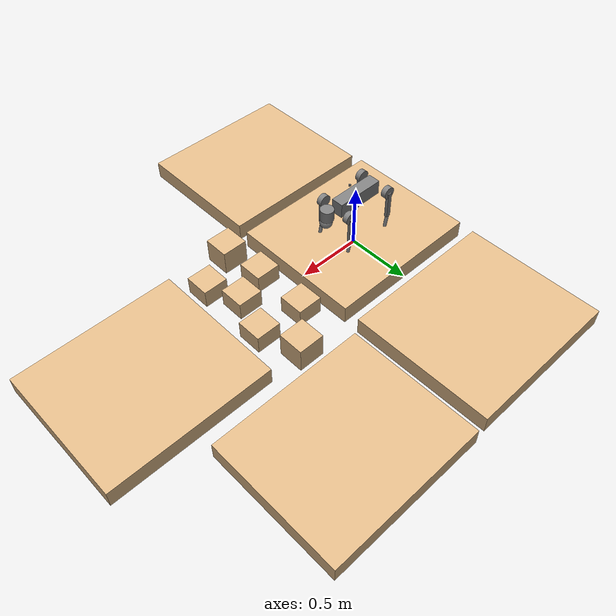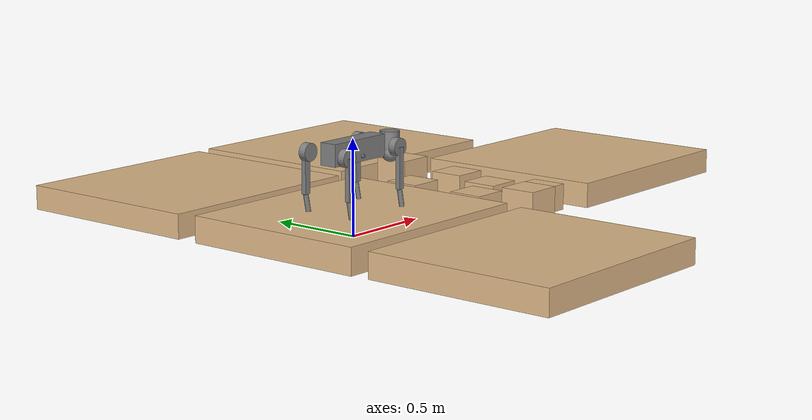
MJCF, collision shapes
<mujoco model="go2 scene">
  <include file="go2.xml"/>

  <statistic center="0 0 0.1" extent="0.8"/>

  <visual>
    <headlight diffuse="0.6 0.6 0.6" ambient="0.3 0.3 0.3" specular="0 0 0"/>
    <rgba haze="0.15 0.25 0.35 1"/>
    <global azimuth="-130" elevation="-20"/>
  </visual>

  <asset>
    <texture type="skybox" builtin="gradient" rgb1="0.3 0.5 0.7" rgb2="0 0 0" width="512" height="3072"/>
    <texture type="2d" name="groundplane" builtin="checker" mark="edge" rgb1="0.2 0.3 0.4" rgb2="0.1 0.2 0.3"
      markrgb="0.8 0.8 0.8" width="300" height="300"/>
    <material name="groundplane" texture="groundplane" texuniform="true" texrepeat="5 5" reflectance="0.2"/>
    <material name="box_material" shininess="0.1" specular="0.5" roughness="0.3"/>
  </asset>

  <worldbody>
    <light pos="0 0 1.5" dir="0 0 -1" directional="true"/>

    <body>
      <geom name="tileA" pos="0 0 0.06985" type="box" contype="4" conaffinity="1" size="0.606425 0.508 0.06985" friction="0.5" material="box_material" rgba="0.87 0.72 0.53 1.0"/>
      <!-- 9cm from other block -->
      <geom name="tileB" pos="1.9 0 0.066675" type="box" contype="4" conaffinity="1" size="0.6096 0.5334 0.066675" friction="0.5" material="box_material" rgba="0.87 0.72 0.53 1.0"/>
      <!-- 12cm gap -->
      <geom name="tileC" pos="0 1.16 0.0650875" type="box" contype="4" conaffinity="1" size="0.606425 0.5334 0.0650875" friction="0.5" material="box_material" rgba="0.87 0.72 0.53 1.0"/>
      <!-- 10cm gap -->
      <geom name="tileD" pos="0 -1.11 0.066675" type="box" contype="4" conaffinity="1" size="0.5969 0.508 0.066675" friction="0.5" material="box_material" rgba="0.87 0.72 0.53 1.0"/>
      <geom name="tileE" pos="1.3 1.2 0.0650875" type="box" contype="4" conaffinity="1" size="0.5969 0.508 0.0650875" friction="0.5" material="box_material" rgba="0.87 0.72 0.53 1.0"/>
      <!-- 5cm gap to the tile -->
      <geom name="small_block1" pos="0.75 0.225 0.0650875" type="box" contype="4" conaffinity="1" size="0.09525 0.09525 0.06985" friction="0.5" material="box_material" rgba="0.87 0.72 0.53 1.0"/>
      <geom name="small_block2" pos="0.75 -0.2 0.0650875" type="box" contype="4" conaffinity="1" size="0.09525 0.09525 0.06985" friction="0.5" material="box_material" rgba="0.87 0.72 0.53 1.0"/>
      <!-- 16cm gap to other block  -->
      <geom name="small_block3" pos="1.1 0.2 0.0650875" type="box" contype="4" conaffinity="1" size="0.09525 0.09525 0.06985" friction="0.5" material="box_material" rgba="0.87 0.72 0.53 1.0"/>
      <geom name="small_block4" pos="1.1 -0.35 0.0650875" type="box" contype="4" conaffinity="1" size="0.09525 0.09525 0.06985" friction="0.5" material="box_material" rgba="0.87 0.72 0.53 1.0"/>
      <geom name="small_block5" pos="1 -0.1 0.0650875" type="box" contype="4" conaffinity="1" size="0.09525 0.09525 0.06985" friction="0.5" material="box_material" rgba="0.87 0.72 0.53 1.0"/>
      <geom name="large_block1" pos=".8 -0.5 0.09525" type="box" contype="4" conaffinity="1" size="0.098425 0.0968375 0.09525" friction="0.5" material="box_material" rgba="0.87 0.72 0.53 1.0"/>
      <geom name="large_block2" pos="1. 0.5 0.09525" type="box" contype="4" conaffinity="1" size="0.098425 0.0968375 0.09525" friction="0.5" material="box_material" rgba="0.87 0.72 0.53 1.0"/>
    </body>

  </worldbody>
</mujoco>

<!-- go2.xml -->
<mujoco model="go2">
  <compiler angle="radian" meshdir="../meshes" autolimits="true" eulerseq="XYZ"/>

  <option cone="elliptic" impratio="100" integrator="implicitfast" timestep="0.0005"/>

<!-- All motor control limits are handeled in the joint actuatorfrcrange field. -->
  <default>
    <default class="go2">
      <geom friction="0.9" margin="0.001" condim="6"/>
      <joint axis="0 1 0" damping="2" armature="0.01" frictionloss="0.2"/>
      <motor ctrllimited="false"/>

      <!-- Hip joints -->
      <default class="hip">
        <joint axis="1 0 0" range="-1.0472 1.0472" actuatorfrcrange="-23.7 23.7"/>

        <!-- Position Control -->
        <default class="hip_pos">
          <position kp="50" ctrllimited="false"/>
        </default>

        <!-- Velocity Control -->
        <default class="hip_vel">
          <velocity kv="8" ctrllimited="false"/>
        </default>
      </default>

      <!-- Thigh joints -->
      <default class="thigh">
        <default class="front_thigh">
          <joint range="-1.5708 3.4907" actuatorfrcrange="-23.7 23.7"/>
        </default>
        <default class="back_thigh">
          <joint range="-0.5236 4.5379" actuatorfrcrange="-23.7 23.7"/>
        </default>

        <!-- Position Control -->
        <default class="thigh_pos">
          <position kp="50" ctrllimited="false"/>
        </default>

        <!-- Velocity Control -->
        <default class="thigh_vel">
          <velocity kv="8" ctrllimited="false"/>
        </default>
      </default>

      <!-- Calf joints -->
      <default class="calf">
        <joint range="-2.7227 -0.83776" actuatorfrcrange="-45.43 45.43"/>

        <!-- Position Control -->
        <default class="calf_pos">
         <position kp="50" ctrllimited="false"/>
        </default>

        <!-- Velocity Control -->
        <default class="calf_vel">
          <velocity kv="8" ctrllimited="false"/>
        </default>
      </default>

      <default class="visual">
        <geom type="mesh" contype="0" conaffinity="0" group="2"/>
      </default>

      <default class="collision">
        <geom group="3"/>
        <default class="foot">
          <geom size="0.022" pos="-0.002 0 -0.213" priority="1" solimp="0.015 1 0.022" condim="6"
            friction="0.8 0.02 0.01"/>
        </default>
      </default>
    </default>
  </default>

  <asset>
    <material name="metal" rgba=".9 .95 .95 1"/>
    <material name="black" rgba="0 0 0 1"/>
    <material name="white" rgba="1 1 1 1"/>
    <material name="gray" rgba="0.671705 0.692426 0.774270 1"/>

    <mesh name="trunk" file="trunk.stl"/>
    <mesh name="calf" file="calf.stl"/>
    <mesh name="foot" file="foot.stl"/>
    <mesh name="hip" file="hip.stl"/>
    <mesh name="thigh" file="thigh.stl"/>
    <mesh name="thigh_mirror" file="thigh_mirror.stl"/>
    <mesh name="calf_mirror" file="calf_mirror.stl"/>

  </asset>

  <worldbody>
    <body name="torso" pos="0 0 0.445" childclass="go2">
      <inertial pos="0.021112 0 -0.005366" quat="-0.000543471 0.713435 -0.00173769 0.700719" mass="6.921"
        diaginertia="0.02448 0.098077 0.107"/>
        <!-- diaginertia changed to match urdf throghout xml -->

      <freejoint name="root"/>

      <geom mesh="trunk" class="visual"/>
      <geom size="0.1881 0.04675 0.057" type="box" class="collision"/>
      <geom size="0.05 0.045" pos="0.285 0 0.01" type="cylinder" class="collision"/>
      <geom size="0.047" pos="0.293 0 -0.06" class="collision"/>

      <site name="imu" pos="-0.02557 0 0.04232"/>
      <site name="torso_mocap_site" pos="0 0 0" euler="0 0 0" size="0.01"/>
      <site name="tracking_camera_site" pos="-0.0635 -0.12 -0.01" euler="0.0 3.14159 1.57079" size="0.01"/>
      <site name="tracking_camera_site_vel" pos="-0.0635 -0.12 -0.01" euler="0.0 0 -1.57079" size="0.01"/>

      <body name="FL_hip" pos="0.1934 0.0465 0">
        <inertial pos="-0.0054 0.00194 -0.000105" quat="0.497014 0.499245 0.505462 0.498237" mass="0.678"
          diaginertia="0.00048 0.000884 0.000596"/>
        <joint name="FL_hip_joint" class="hip"/>
        <geom mesh="hip" class="visual"/>
        <geom size="0.046 0.02" pos="0 0.08 0" quat="1 1 0 0" type="cylinder" class="collision"/>

        <body name="FL_hip_rotor" pos="0.11215 0.04675 0">
          <inertial pos="0 0 0" euler="0 0 0" mass="0.089"
                diaginertia="0.000111842 0.000059647 0.000059647"/>
        </body>

        <body name="FL_thigh" pos="0 0.0955 0">
          <inertial pos="-0.00374 -0.0223 -0.0327" quat="0.829533 0.0847635 -0.0200632 0.551623" mass="1.152"
            diaginertia="0.00594973 0.00584149 0.000878787"/>
          <joint name="FL_thigh_joint" class="front_thigh"/>
          <geom mesh="thigh" class="visual"/>
          <geom size="0.1065 0.01225 0.017" pos="0 0 -0.1065" quat="0.707107 0 0.707107 0" type="box" class="collision"/>
          <body name="FL_calf" pos="0 0 -0.213">
            <inertial pos="0.00629595 -0.000622121 -0.141417" quat="0.710672 0.00154099 -0.00450087 0.703508"
              mass="0.241352" diaginertia="0.0014901 0.00146356 5.31397e-05"/>
            <joint name="FL_calf_joint" class="calf"/>
            <geom mesh="calf" class="visual"/>
            <geom size="0.012 0.06" pos="0.008 0 -0.06" quat="0.994493 0 -0.104807 0" type="cylinder" class="collision"/>
            <geom size="0.011 0.0325" pos="0.02 0 -0.148" quat="0.999688 0 0.0249974 0" type="cylinder" class="collision"/>
            <geom pos="0 0 -0.213" mesh="foot" class="visual" material="black"/>
            <geom name="FL" class="foot"/>
            <site name="FL_foot_site" pos="0 0 -0.213" size="0.01"/>
          </body>
        </body>
      </body>

      <body name="FR_hip" pos="0.1934 -0.0465 0">
        <inertial pos="-0.0054 -0.00194 -0.000105" quat="0.498237 0.505462 0.499245 0.497014" mass="0.678"
          diaginertia="0.00088403 0.000596003 0.000479967"/>
        <joint name="FR_hip_joint" class="hip"/>
        <geom mesh="hip" class="visual" quat="0 1 0 0"/>
        <geom size="0.046 0.02" pos="0 -0.08 0" quat="0.707107 0.707107 0 0" type="cylinder" class="collision"/>

        <body name="FR_hip_rotor" pos="0.11215 -0.04675 0">
          <inertial pos="0 0 0" euler="0 0 0" mass="0.089"
                diaginertia="0.000111842 0.000059647 0.000059647"/>
        </body>

        <body name="FR_thigh" pos="0 -0.0955 0">
          <inertial pos="-0.00374 0.0223 -0.0327" quat="0.551623 -0.0200632 0.0847635 0.829533" mass="1.152"
            diaginertia="0.00594973 0.00584149 0.000878787"/>
          <joint name="FR_thigh_joint" class="front_thigh"/>
          <geom mesh="thigh_mirror" class="visual"/>
          <geom size="0.1065 0.01225 0.017" pos="0 0 -0.1065" quat="0.707107 0 0.707107 0" type="box" class="collision"/>
          <body name="FR_calf" pos="0 0 -0.213">
            <inertial pos="0.00629595 0.000622121 -0.141417" quat="0.703508 -0.00450087 0.00154099 0.710672"
              mass="0.241352" diaginertia="0.0014901 0.00146356 5.31397e-05"/>
            <joint name="FR_calf_joint" class="calf"/>
            <geom mesh="calf_mirror" class="visual"/>
            <geom size="0.013 0.06" pos="0.01 0 -0.06" quat="0.995004 0 -0.0998334 0" type="cylinder" class="collision"/>
            <geom size="0.011 0.0325" pos="0.02 0 -0.148" quat="0.999688 0 0.0249974 0" type="cylinder" class="collision"/>
            <geom pos="0 0 -0.213" mesh="foot" class="visual" material="black"/>
            <geom name="FR" class="foot"/>
            <site name="FR_foot_site" pos="0 0 -0.213" size="0.01"/>
          </body>
        </body>
      </body>
      <body name="RL_hip" pos="-0.1934 0.0465 0">
        <inertial pos="0.0054 0.00194 -0.000105" quat="0.505462 0.498237 0.497014 0.499245" mass="0.678"
          diaginertia="0.00088403 0.000596003 0.000479967"/>
        <joint name="RL_hip_joint" class="hip"/>
        <geom mesh="hip" class="visual" quat="0 0 1 0"/>
        <geom size="0.046 0.02" pos="0 0.08 0" quat="0.707107 0.707107 0 0" type="cylinder" class="collision"/>

        <body name="RL_hip_rotor" pos="-0.11215 0.04675 0">
          <inertial pos="0 0 0" euler="0 0 0" mass="0.089"
                diaginertia="0.000111842 0.000059647 0.000059647"/>
        </body>

        <body name="RL_thigh" pos="0 0.0955 0">
          <inertial pos="-0.00374 -0.0223 -0.0327" quat="0.829533 0.0847635 -0.0200632 0.551623" mass="1.152"
            diaginertia="0.00594973 0.00584149 0.000878787"/>
          <joint name="RL_thigh_joint" class="back_thigh"/>
          <geom mesh="thigh" class="visual"/>
          <geom size="0.1065 0.01225 0.017" pos="0 0 -0.1065" quat="0.707107 0 0.707107 0" type="box" class="collision"/>
          <body name="RL_calf" pos="0 0 -0.213">
            <inertial pos="0.00629595 -0.000622121 -0.141417" quat="0.710672 0.00154099 -0.00450087 0.703508"
              mass="0.241352" diaginertia="0.0014901 0.00146356 5.31397e-05"/>
            <joint name="RL_calf_joint" class="calf"/>
            <geom mesh="calf" class="visual"/>
            <geom size="0.013 0.06" pos="0.01 0 -0.06" quat="0.995004 0 -0.0998334 0" type="cylinder" class="collision"/>
            <geom size="0.011 0.0325" pos="0.02 0 -0.148" quat="0.999688 0 0.0249974 0" type="cylinder" class="collision"/>
            <geom pos="0 0 -0.213" mesh="foot" class="visual" material="black"/>
            <geom name="RL" class="foot"/>
            <site name="RL_foot_site" pos="0 0 -0.213" size="0.01"/>
          </body>
        </body>
      </body>
      <body name="RR_hip" pos="-0.1934 -0.0465 0">
        <inertial pos="0.0054 -0.00194 -0.000105" quat="0.499245 0.497014 0.498237 0.505462" mass="0.678"
          diaginertia="0.00088403 0.000596003 0.000479967"/>
        <joint name="RR_hip_joint" class="hip"/>
        <geom mesh="hip" class="visual" quat="0 0 0 -1"/>
        <geom size="0.046 0.02" pos="0 -0.08 0" quat="0.707107 0.707107 0 0" type="cylinder" class="collision"/>

        <body name="RR_hip_rotor" pos="-0.11215 -0.04675 0">
          <inertial pos="0 0 0" euler="0 0 0" mass="0.089"
                diaginertia="0.000111842 0.000059647 0.000059647"/>
        </body>

        <body name="RR_thigh" pos="0 -0.0955 0">
          <inertial pos="-0.00374 0.0223 -0.0327" quat="0.551623 -0.0200632 0.0847635 0.829533" mass="1.152"
            diaginertia="0.00594973 0.00584149 0.000878787"/>
          <joint name="RR_thigh_joint" class="back_thigh"/>
          <geom mesh="thigh_mirror" class="visual"/>
          <geom size="0.1065 0.01225 0.017" pos="0 0 -0.1065" quat="0.707107 0 0.707107 0" type="box" class="collision"/>
          <body name="RR_calf" pos="0 0 -0.213">
            <inertial pos="0.00629595 0.000622121 -0.141417" quat="0.703508 -0.00450087 0.00154099 0.710672"
              mass="0.241352" diaginertia="0.0014901 0.00146356 5.31397e-05"/>
            <joint name="RR_calf_joint" class="calf"/>
            <geom mesh="calf_mirror" class="visual"/>
            <geom size="0.013 0.06" pos="0.01 0 -0.06" quat="0.995004 0 -0.0998334 0" type="cylinder" class="collision"/>
            <geom size="0.011 0.0325" pos="0.02 0 -0.148" quat="0.999688 0 0.0249974 0" type="cylinder" class="collision"/>
            <geom pos="0 0 -0.213" mesh="foot" class="visual" material="black"/>
            <geom name="RR" class="foot"/>
            <site name="RR_foot_site" pos="0 0 -0.213" size="0.01"/>
          </body>
        </body>
      </body>
    </body>
  </worldbody>

<!-- Sensors -->
<sensor>
    <!-- Joint position sensors -->
    <jointpos name="FL_hip_joint_pos_sensor" joint="FL_hip_joint" noise="0.001"/>
    <jointpos name="FR_hip_joint_pos_sensor" joint="FR_hip_joint" noise="0.001"/>
    <jointpos name="RL_hip_joint_pos_sensor" joint="RL_hip_joint" noise="0.001"/>
    <jointpos name="RR_hip_joint_pos_sensor" joint="RR_hip_joint" noise="0.001"/>

    <jointpos name="FL_thigh_joint_pos_sensor" joint="FL_thigh_joint" noise="0.001"/>
    <jointpos name="FR_thigh_joint_pos_sensor" joint="FR_thigh_joint" noise="0.001"/>
    <jointpos name="RL_thigh_joint_pos_sensor" joint="RL_thigh_joint" noise="0.001"/>
    <jointpos name="RR_thigh_joint_pos_sensor" joint="RR_thigh_joint" noise="0.001"/>

    <jointpos name="FL_calf_joint_pos_sensor" joint="FL_calf_joint" noise="0.001"/>
    <jointpos name="FR_calf_joint_pos_sensor" joint="FR_calf_joint" noise="0.001"/>
    <jointpos name="RL_calf_joint_pos_sensor" joint="RL_calf_joint" noise="0.001"/>
    <jointpos name="RR_calf_joint_pos_sensor" joint="RR_calf_joint" noise="0.001"/>

    <!-- Joint velocity sensors -->
    <jointvel name="FL_hip_joint_vel_sensor" joint="FL_hip_joint" noise="0.001"/>
    <jointvel name="FR_hip_joint_vel_sensor" joint="FR_hip_joint" noise="0.001"/>
    <jointvel name="RL_hip_joint_vel_sensor" joint="RL_hip_joint" noise="0.001"/>
    <jointvel name="RR_hip_joint_vel_sensor" joint="RR_hip_joint" noise="0.001"/>

    <jointvel name="FL_thigh_joint_vel_sensor" joint="FL_thigh_joint" noise="0.001"/>
    <jointvel name="FR_thigh_joint_vel_sensor" joint="FR_thigh_joint" noise="0.001"/>
    <jointvel name="RL_thigh_joint_vel_sensor" joint="RL_thigh_joint" noise="0.001"/>
    <jointvel name="RR_thigh_joint_vel_sensor" joint="RR_thigh_joint" noise="0.001"/>

    <jointvel name="FL_calf_joint_vel_sensor" joint="FL_calf_joint" noise="0.001"/>
    <jointvel name="FR_calf_joint_vel_sensor" joint="FR_calf_joint" noise="0.001"/>
    <jointvel name="RL_calf_joint_vel_sensor" joint="RL_calf_joint" noise="0.001"/>
    <jointvel name="RR_calf_joint_vel_sensor" joint="RR_calf_joint" noise="0.001"/>

    <!-- IMU sensors -->
    <accelerometer name="imu_acc_sensor" site="imu" noise="0.1"/>
    <gyro name="imu_gyro_sensor" site="imu" noise="0.01"/>
    <framequat name="imu_quat_sensor" objtype="site" objname="imu" noise="0.01"/>

    <!-- Mocap sensors -->
    <framepos name="base_mocap_pos_sensor" objtype="site" objname="torso_mocap_site" noise="0.01"/>
    <framequat name="base_mocap_quat_sensor" objtype="site" objname="torso_mocap_site" noise="0.01"/>

    <!-- Tracking Camera -->
    <framepos name="base_tracking_camera_pos_sensor" objtype="site" objname="tracking_camera_site"/>
    <framequat name="base_tracking_camera_quat_sensor" objtype="site" objname="tracking_camera_site" noise="0.01"/>
    <gyro name="base_tracking_camera_gyro" site="tracking_camera_site_vel" noise="0.01"/>
    <velocimeter name="base_tracking_camera_vel" site="tracking_camera_site_vel" noise="0.01"/>

    <!--  Force sensors  -->
    <force name="FL_force_sensor" site="FL_foot_site"/>
    <force name="FR_force_sensor" site="FR_foot_site"/>
    <force name="RL_force_sensor" site="RL_foot_site"/>
    <force name="RR_force_sensor" site="RR_foot_site"/>
  </sensor>

<!-- Actuators -->
  <actuator>
    <!-- Position Control -->
    <position class="hip_pos" name="FL_hip_pos" joint="FL_hip_joint"/>
    <position class="thigh_pos" name="FL_thigh_pos" joint="FL_thigh_joint"/>
    <position class="calf_pos" name="FL_calf_pos" joint="FL_calf_joint"/>
    <position class="hip_pos" name="FR_hip_pos" joint="FR_hip_joint"/>
    <position class="thigh_pos" name="FR_thigh_pos" joint="FR_thigh_joint"/>
    <position class="calf_pos" name="FR_calf_pos" joint="FR_calf_joint"/>
    <position class="hip_pos" name="RL_hip_pos" joint="RL_hip_joint"/>
    <position class="thigh_pos" name="RL_thigh_pos" joint="RL_thigh_joint"/>
    <position class="calf_pos" name="RL_calf_pos" joint="RL_calf_joint"/>
    <position class="hip_pos" name="RR_hip_pos" joint="RR_hip_joint"/>
    <position class="thigh_pos" name="RR_thigh_pos" joint="RR_thigh_joint"/>
    <position class="calf_pos" name="RR_calf_pos" joint="RR_calf_joint"/>

    <!-- Velocity Control -->
    <velocity class="hip_vel" name="FL_hip_vel" joint="FL_hip_joint"/>
    <velocity class="thigh_vel" name="FL_thigh_vel" joint="FL_thigh_joint"/>
    <velocity class="calf_vel" name="FL_calf_vel" joint="FL_calf_joint"/>
    <velocity class="hip_vel" name="FR_hip_vel" joint="FR_hip_joint"/>
    <velocity class="thigh_vel" name="FR_thigh_vel" joint="FR_thigh_joint"/>
    <velocity class="calf_vel" name="FR_calf_vel" joint="FR_calf_joint"/>
    <velocity class="hip_vel" name="RL_hip_vel" joint="RL_hip_joint"/>
    <velocity class="thigh_vel" name="RL_thigh_vel" joint="RL_thigh_joint"/>
    <velocity class="calf_vel" name="RL_calf_vel" joint="RL_calf_joint"/>
    <velocity class="hip_vel" name="RR_hip_vel" joint="RR_hip_joint"/>
    <velocity class="thigh_vel" name="RR_thigh_vel" joint="RR_thigh_joint"/>
    <velocity class="calf_vel" name="RR_calf_vel" joint="RR_calf_joint"/>

    <!-- Torque Control -->
    <motor class="hip" name="FL_hip" joint="FL_hip_joint"/>
    <motor class="thigh" name="FL_thigh" joint="FL_thigh_joint"/>
    <motor class="calf" name="FL_calf" joint="FL_calf_joint"/>
    <motor class="hip" name="FR_hip" joint="FR_hip_joint"/>
    <motor class="thigh" name="FR_thigh" joint="FR_thigh_joint"/>
    <motor class="calf" name="FR_calf" joint="FR_calf_joint"/>
    <motor class="hip" name="RL_hip" joint="RL_hip_joint"/>
    <motor class="thigh" name="RL_thigh" joint="RL_thigh_joint"/>
    <motor class="calf" name="RL_calf" joint="RL_calf_joint"/>
    <motor class="hip" name="RR_hip" joint="RR_hip_joint"/>
    <motor class="thigh" name="RR_thigh" joint="RR_thigh_joint"/>
    <motor class="calf" name="RR_calf" joint="RR_calf_joint"/>
  </actuator>

  <keyframe>
    <key name="home" qpos="0 0 0.41 0 0 0 0 0 1.1 -1.2 0 1.1 -1.2 0 0.9 -1.8 0 0.9 -1.8"
      ctrl="0 1.1 -2 0 1.1 -2 0 0.9 -1.8 0 0.9 -1.8
            0 0 0 0 0 0 0 0 0 0 0 0
            0 0 0 0 0 0 0 0 0 0 0 0"/>
  </keyframe>
</mujoco>
